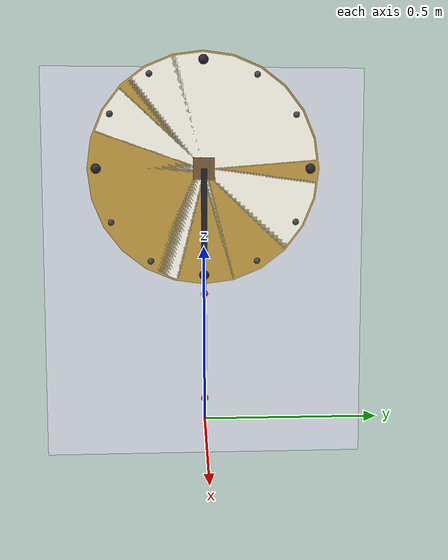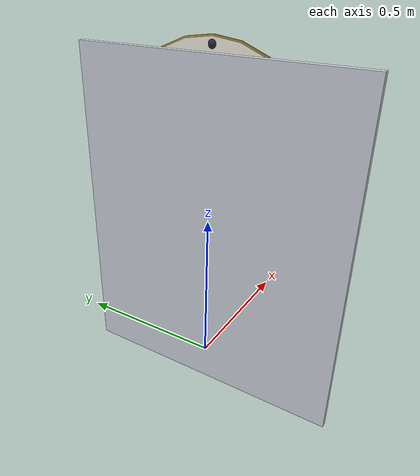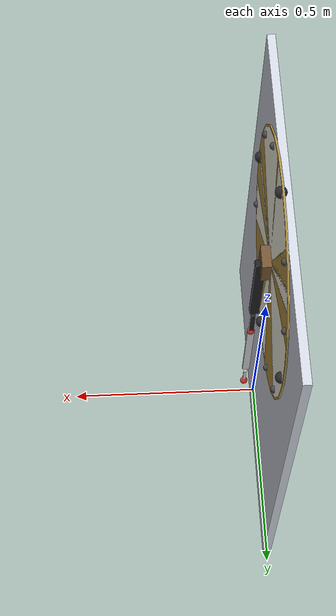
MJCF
<mujoco model="wall_mounted_double_pendulum">
  <compiler angle="degree" inertiafromgeom="true" autolimits="true"/>

  <option gravity="0 0 -9.81" timestep="0.002" integrator="RK4"/>

  <default>
    <joint type="hinge" axis="1 0 0" damping="0.0005" armature="0.001" limited="false" range="-179 179"/>
    <geom type="capsule" size="0.015" density="850" friction="0.6 0.02 0.02" rgba="0.2 0.2 0.25 1"/>
    <motor ctrllimited="true"/>
    <site size="0.01" rgba="0.9 0.2 0.2 1"/>
  </default>

  <worldbody>
    <light name="main_light" pos="1.0 -1.0 2.0" dir="-0.3 0.2 -1" diffuse="0.9 0.9 0.9" specular="0.2 0.2 0.2"/>

    <geom name="wall" type="box" pos="-0.01 0 0.45" size="0.01 0.45 0.55" rgba="0.82 0.84 0.88 1"/>
    <geom name="clock_face" type="cylinder" pos="0.004 0 0.72" quat="0.707107 0 0.707107 0" size="0.32 0.003" rgba="0.97 0.96 0.9 1" contype="0" conaffinity="0"/>
    <geom name="clock_rim" type="cylinder" pos="0.005 0 0.72" quat="0.707107 0 0.707107 0" size="0.325 0.002" rgba="0.72 0.58 0.24 1" contype="0" conaffinity="0"/>
    <geom name="clock_hub" type="cylinder" pos="0.006 0 0.72" quat="0.707107 0 0.707107 0" size="0.03 0.004" rgba="0.72 0.58 0.24 1" contype="0" conaffinity="0"/>
    <geom name="tick_12" type="sphere" pos="0.007 0.0000 1.0200" size="0.014" rgba="0.16 0.16 0.18 1" contype="0" conaffinity="0"/>
    <geom name="tick_1" type="sphere" pos="0.007 0.1500 0.9798" size="0.009" rgba="0.28 0.28 0.3 1" contype="0" conaffinity="0"/>
    <geom name="tick_2" type="sphere" pos="0.007 0.2598 0.8700" size="0.009" rgba="0.28 0.28 0.3 1" contype="0" conaffinity="0"/>
    <geom name="tick_3" type="sphere" pos="0.007 0.3000 0.7200" size="0.014" rgba="0.16 0.16 0.18 1" contype="0" conaffinity="0"/>
    <geom name="tick_4" type="sphere" pos="0.007 0.2598 0.5700" size="0.009" rgba="0.28 0.28 0.3 1" contype="0" conaffinity="0"/>
    <geom name="tick_5" type="sphere" pos="0.007 0.1500 0.4602" size="0.009" rgba="0.28 0.28 0.3 1" contype="0" conaffinity="0"/>
    <geom name="tick_6" type="sphere" pos="0.007 0.0000 0.4200" size="0.014" rgba="0.16 0.16 0.18 1" contype="0" conaffinity="0"/>
    <geom name="tick_7" type="sphere" pos="0.007 -0.1500 0.4602" size="0.009" rgba="0.28 0.28 0.3 1" contype="0" conaffinity="0"/>
    <geom name="tick_8" type="sphere" pos="0.007 -0.2598 0.5700" size="0.009" rgba="0.28 0.28 0.3 1" contype="0" conaffinity="0"/>
    <geom name="tick_9" type="sphere" pos="0.007 -0.3000 0.7200" size="0.014" rgba="0.16 0.16 0.18 1" contype="0" conaffinity="0"/>
    <geom name="tick_10" type="sphere" pos="0.007 -0.2598 0.8700" size="0.009" rgba="0.28 0.28 0.3 1" contype="0" conaffinity="0"/>
    <geom name="tick_11" type="sphere" pos="0.007 -0.1500 0.9798" size="0.009" rgba="0.28 0.28 0.3 1" contype="0" conaffinity="0"/>
    <geom name="mount" type="box" pos="0.01 0 0.72" size="0.02 0.03 0.03" rgba="0.45 0.33 0.2 1"/>

    <body name="link1" pos="0.03 0 0.72">
      <joint name="shoulder"/>
      <geom name="hour_hand_shaft" type="box" pos="0 0 -0.1200" size="0.012 0.008 0.1200" density="700" rgba="0.12 0.12 0.14 1"/>
      <geom name="hour_hand_tip" type="box" pos="0 0 -0.3050" size="0.006 0.004 0.045" density="700" rgba="0.12 0.12 0.14 1"/>
      <site name="elbow_anchor" pos="0 0 -0.3500"/>

      <body name="link2" pos="0 0 -0.3500">
        <joint name="elbow"/>
        <geom name="minute_hand_shaft" type="box" pos="0 0 -0.1100" size="0.009 0.005 0.1100" density="600" rgba="0.8 0.8 0.82 1"/>
        <geom name="minute_hand_tip" type="box" pos="0 0 -0.2700" size="0.004 0.0025 0.030" density="600" rgba="0.8 0.8 0.82 1"/>
        <site name="tip" pos="0 0 -0.3000"/>
      </body>
    </body>
  </worldbody>

  <actuator>
    <motor name="shoulder_torque" joint="shoulder" gear="1" ctrlrange="-8 8"/>
    <motor name="elbow_torque" joint="elbow" gear="1" ctrlrange="-4 4"/>
  </actuator>

  <sensor>
    <jointpos name="shoulder_pos" joint="shoulder"/>
    <jointvel name="shoulder_vel" joint="shoulder"/>
    <jointpos name="elbow_pos" joint="elbow"/>
    <jointvel name="elbow_vel" joint="elbow"/>
    <actuatorfrc name="shoulder_torque_sensor" actuator="shoulder_torque"/>
    <actuatorfrc name="elbow_torque_sensor" actuator="elbow_torque"/>
  </sensor>

  <keyframe>
    <key name="hanging" qpos="0 0" ctrl="0 0"/>
  </keyframe>
</mujoco>
